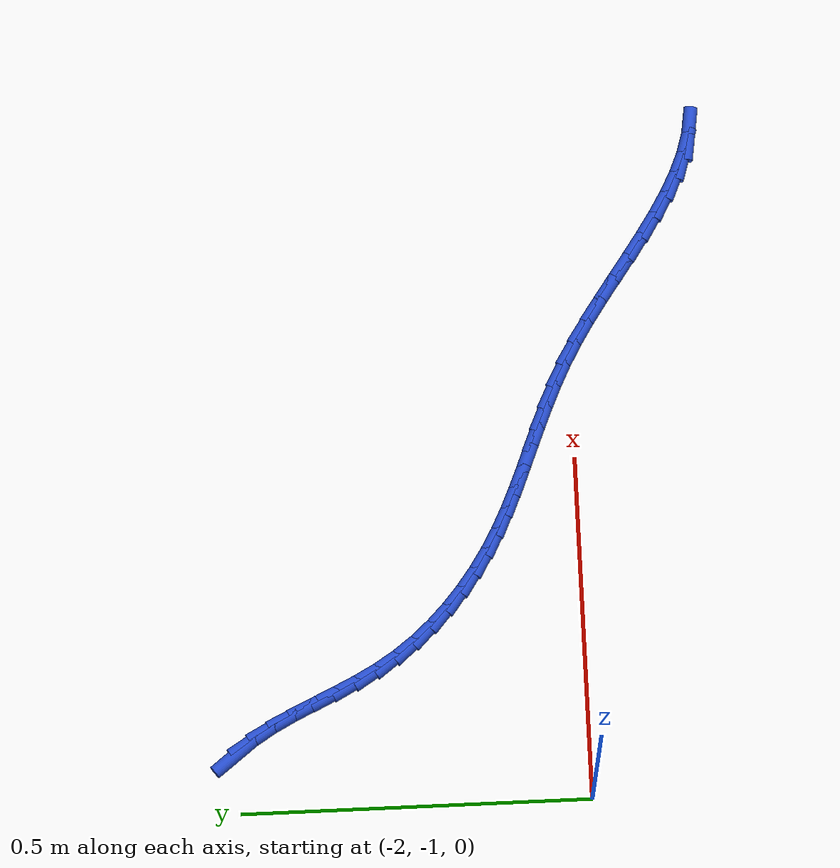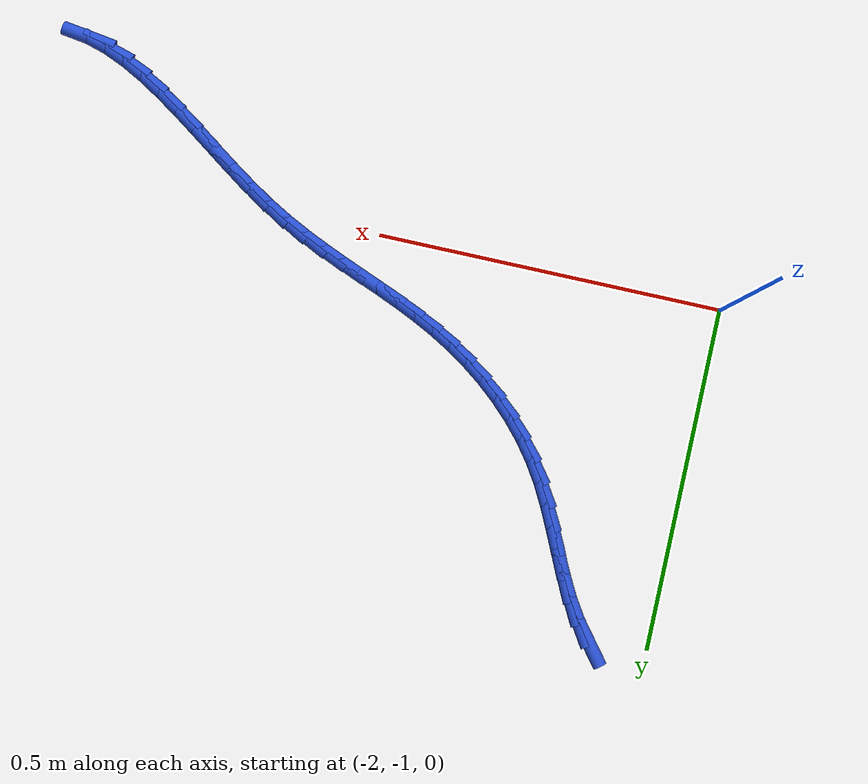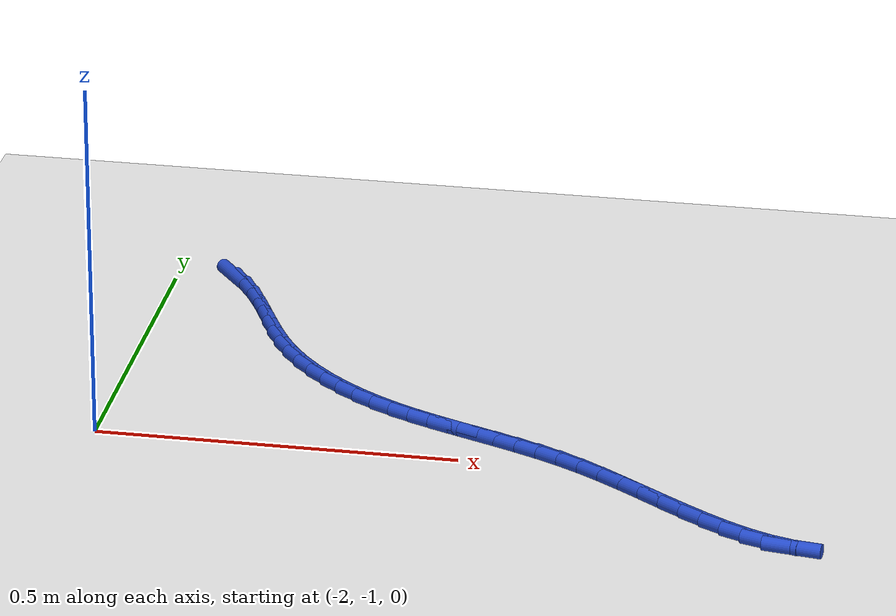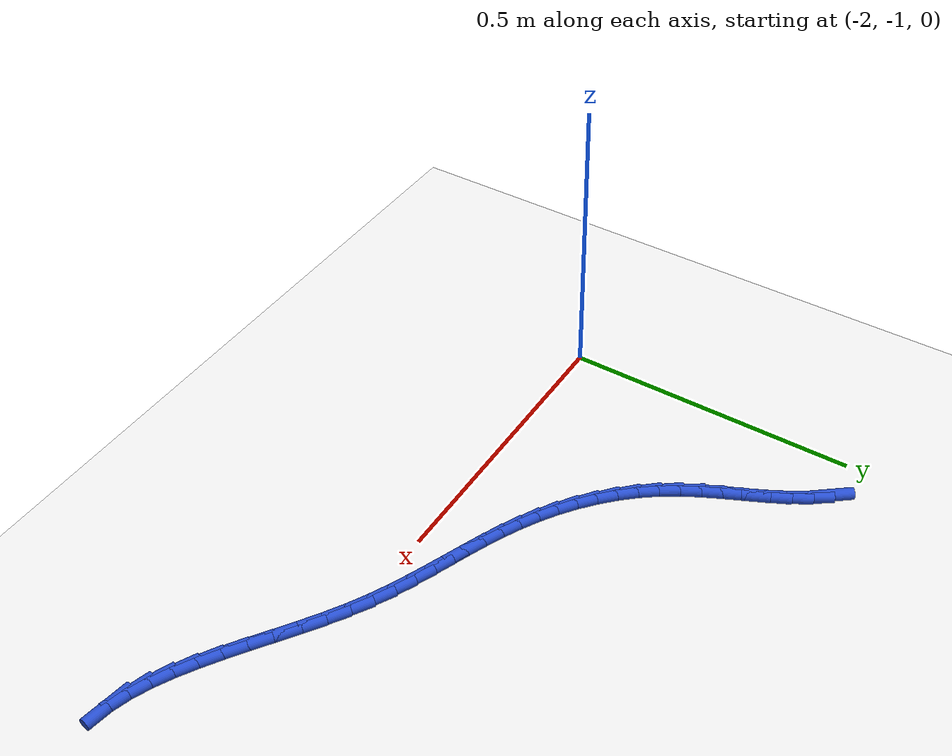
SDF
<sdf version="1.6">
 <world name="default">
  <model name="ground_plane">
   <static>1</static>
   <link name="link">
    <collision name="collision">
     <geometry><plane><normal>0 0 1</normal><size>100 100</size></plane></geometry>
     <surface><friction><ode><mu>100</mu><mu2>50</mu2></ode></friction></surface>
    </collision>
    <visual name="visual">
     <cast_shadows>0</cast_shadows>
     <geometry><plane><normal>0 0 1</normal><size>100 100</size></plane></geometry>
     <material>
      <script><uri>file://media/materials/scripts/gazebo.material</uri><name>Gazebo/WhiteGlow</name></script>
     </material>
    </visual>
   </link>
  </model>
  <model name="line">
   <link name="link_125">
    <pose>-1.9141916679884465 -0.49680602879573327 0.01 0 1.57 -0.9065160102175781</pose>
    <collision name="collision">
     <geometry><cylinder><radius>0.01</radius><length>0.08</length></cylinder></geometry>
    </collision>
    <visual name="visual">
     <material>
      <script><name>Gazebo/Blue</name><uri>file://media/materials/scripts/gazebo.material</uri></script>
     </material>
     <geometry><cylinder><radius>0.01</radius><length>0.08</length></cylinder></geometry>
    </visual>
   </link>
   <link name="link_126">
    <pose>-1.8940552648370443 -0.5225234676857663 0.01 0 1.57 -1.0103827231081042</pose>
    <collision name="collision">
     <geometry><cylinder><radius>0.01</radius><length>0.08</length></cylinder></geometry>
    </collision>
    <visual name="visual">
     <material>
      <script><name>Gazebo/Blue</name><uri>file://media/materials/scripts/gazebo.material</uri></script>
     </material>
     <geometry><cylinder><radius>0.01</radius><length>0.08</length></cylinder></geometry>
    </visual>
   </link>
   <link name="link_127">
    <pose>-1.876521114274096 -0.5504651855248635 0.01 0 1.57 -1.0823350259223155</pose>
    <collision name="collision">
     <geometry><cylinder><radius>0.01</radius><length>0.08</length></cylinder></geometry>
    </collision>
    <visual name="visual">
     <material>
      <script><name>Gazebo/Blue</name><uri>file://media/materials/scripts/gazebo.material</uri></script>
     </material>
     <geometry><cylinder><radius>0.01</radius><length>0.08</length></cylinder></geometry>
    </visual>
   </link>
   <link name="link_128">
    <pose>-1.860809726167149 -0.5800304749841103 0.01 0 1.57 -1.123653668946435</pose>
    <collision name="collision">
     <geometry><cylinder><radius>0.01</radius><length>0.08</length></cylinder></geometry>
    </collision>
    <visual name="visual">
     <material>
      <script><name>Gazebo/Blue</name><uri>file://media/materials/scripts/gazebo.material</uri></script>
     </material>
     <geometry><cylinder><radius>0.01</radius><length>0.08</length></cylinder></geometry>
    </visual>
   </link>
   <link name="link_129">
    <pose>-1.846141610383749 -0.6106186287345927 0.01 0 1.57 -1.1359486665251943</pose>
    <collision name="collision">
     <geometry><cylinder><radius>0.01</radius><length>0.08</length></cylinder></geometry>
    </collision>
    <visual name="visual">
     <material>
      <script><name>Gazebo/Blue</name><uri>file://media/materials/scripts/gazebo.material</uri></script>
     </material>
     <geometry><cylinder><radius>0.01</radius><length>0.08</length></cylinder></geometry>
    </visual>
   </link>
   <link name="link_130">
    <pose>-1.8317372767914422 -0.6416289394473962 0.01 0 1.57 -1.1200969514485288</pose>
    <collision name="collision">
     <geometry><cylinder><radius>0.01</radius><length>0.08</length></cylinder></geometry>
    </collision>
    <visual name="visual">
     <material>
      <script><name>Gazebo/Blue</name><uri>file://media/materials/scripts/gazebo.material</uri></script>
     </material>
     <geometry><cylinder><radius>0.01</radius><length>0.08</length></cylinder></geometry>
    </visual>
   </link>
   <link name="link_131">
    <pose>-1.8168172352577754 -0.6724606997936066 0.01 0 1.57 -1.0760009208835482</pose>
    <collision name="collision">
     <geometry><cylinder><radius>0.01</radius><length>0.08</length></cylinder></geometry>
    </collision>
    <visual name="visual">
     <material>
      <script><name>Gazebo/Blue</name><uri>file://media/materials/scripts/gazebo.material</uri></script>
     </material>
     <geometry><cylinder><radius>0.01</radius><length>0.08</length></cylinder></geometry>
    </visual>
   </link>
   <link name="link_132">
    <pose>-1.8006019956502934 -0.70251320244431 0.01 0 1.57 -1.004088030014121</pose>
    <collision name="collision">
     <geometry><cylinder><radius>0.01</radius><length>0.08</length></cylinder></geometry>
    </collision>
    <visual name="visual">
     <material>
      <script><name>Gazebo/Blue</name><uri>file://media/materials/scripts/gazebo.material</uri></script>
     </material>
     <geometry><cylinder><radius>0.01</radius><length>0.08</length></cylinder></geometry>
    </visual>
   </link>
   <link name="link_133">
    <pose>-1.7823452738773249 -0.7312036618149991 0.01 0 1.57 -0.9221451541750522</pose>
    <collision name="collision">
     <geometry><cylinder><radius>0.01</radius><length>0.08</length></cylinder></geometry>
    </collision>
    <visual name="visual">
     <material>
      <script><name>Gazebo/Blue</name><uri>file://media/materials/scripts/gazebo.material</uri></script>
     </material>
     <geometry><cylinder><radius>0.01</radius><length>0.08</length></cylinder></geometry>
    </visual>
   </link>
   <link name="link_134">
    <pose>-1.761846653951014 -0.7582439046389002 0.01 0 1.57 -0.8448805107467622</pose>
    <collision name="collision">
     <geometry><cylinder><radius>0.01</radius><length>0.08</length></cylinder></geometry>
    </collision>
    <visual name="visual">
     <material>
      <script><name>Gazebo/Blue</name><uri>file://media/materials/scripts/gazebo.material</uri></script>
     </material>
     <geometry><cylinder><radius>0.01</radius><length>0.08</length></cylinder></geometry>
    </visual>
   </link>
   <link name="link_135">
    <pose>-1.7393524960266067 -0.783586888710216 0.01 0 1.57 -0.7723454670075549</pose>
    <collision name="collision">
     <geometry><cylinder><radius>0.01</radius><length>0.08</length></cylinder></geometry>
    </collision>
    <visual name="visual">
     <material>
      <script><name>Gazebo/Blue</name><uri>file://media/materials/scripts/gazebo.material</uri></script>
     </material>
     <geometry><cylinder><radius>0.01</radius><length>0.08</length></cylinder></geometry>
    </visual>
   </link>
   <link name="link_136">
    <pose>-1.7151222982747898 -0.8071926625858297 0.01 0 1.57 -0.7039943866764551</pose>
    <collision name="collision">
     <geometry><cylinder><radius>0.01</radius><length>0.08</length></cylinder></geometry>
    </collision>
    <visual name="visual">
     <material>
      <script><name>Gazebo/Blue</name><uri>file://media/materials/scripts/gazebo.material</uri></script>
     </material>
     <geometry><cylinder><radius>0.01</radius><length>0.08</length></cylinder></geometry>
    </visual>
   </link>
   <link name="link_137">
    <pose>-1.6894155588662496 -0.8290212748226243 0.01 0 1.57 -0.6391766042514246</pose>
    <collision name="collision">
     <geometry><cylinder><radius>0.01</radius><length>0.08</length></cylinder></geometry>
    </collision>
    <visual name="visual">
     <material>
      <script><name>Gazebo/Blue</name><uri>file://media/materials/scripts/gazebo.material</uri></script>
     </material>
     <geometry><cylinder><radius>0.01</radius><length>0.08</length></cylinder></geometry>
    </visual>
   </link>
   <link name="link_138">
    <pose>-1.6624917759716729 -0.8490327739774841 0.01 0 1.57 -0.5771708336361118</pose>
    <collision name="collision">
     <geometry><cylinder><radius>0.01</radius><length>0.08</length></cylinder></geometry>
    </collision>
    <visual name="visual">
     <material>
      <script><name>Gazebo/Blue</name><uri>file://media/materials/scripts/gazebo.material</uri></script>
     </material>
     <geometry><cylinder><radius>0.01</radius><length>0.08</length></cylinder></geometry>
    </visual>
   </link>
   <link name="link_139">
    <pose>-1.6346104477617465 -0.8671872086072911 0.01 0 1.57 -0.5174218180754915</pose>
    <collision name="collision">
     <geometry><cylinder><radius>0.01</radius><length>0.08</length></cylinder></geometry>
    </collision>
    <visual name="visual">
     <material>
      <script><name>Gazebo/Blue</name><uri>file://media/materials/scripts/gazebo.material</uri></script>
     </material>
     <geometry><cylinder><radius>0.01</radius><length>0.08</length></cylinder></geometry>
    </visual>
   </link>
   <link name="link_140">
    <pose>-1.6060267688474585 -0.883455423353819 0.01 0 1.57 -0.46441415131262453</pose>
    <collision name="collision">
     <geometry><cylinder><radius>0.01</radius><length>0.08</length></cylinder></geometry>
    </collision>
    <visual name="visual">
     <material>
      <script><name>Gazebo/Blue</name><uri>file://media/materials/scripts/gazebo.material</uri></script>
     </material>
     <geometry><cylinder><radius>0.01</radius><length>0.08</length></cylinder></geometry>
    </visual>
   </link>
   <link name="link_141">
    <pose>-1.5769010954331062 -0.8980461783430259 0.01 0 1.57 -0.4238193698358599</pose>
    <collision name="collision">
     <geometry><cylinder><radius>0.01</radius><length>0.08</length></cylinder></geometry>
    </collision>
    <visual name="visual">
     <material>
      <script><name>Gazebo/Blue</name><uri>file://media/materials/scripts/gazebo.material</uri></script>
     </material>
     <geometry><cylinder><radius>0.01</radius><length>0.08</length></cylinder></geometry>
    </visual>
   </link>
   <link name="link_142">
    <pose>-1.547301191677958 -0.9114005138708252 0.01 0 1.57 -0.3966172261444883</pose>
    <collision name="collision">
     <geometry><cylinder><radius>0.01</radius><length>0.08</length></cylinder></geometry>
    </collision>
    <visual name="visual">
     <material>
      <script><name>Gazebo/Blue</name><uri>file://media/materials/scripts/gazebo.material</uri></script>
     </material>
     <geometry><cylinder><radius>0.01</radius><length>0.08</length></cylinder></geometry>
    </visual>
   </link>
   <link name="link_143">
    <pose>-1.5172909675348472 -0.923969139052151 0.01 0 1.57 -0.38308707780309137</pose>
    <collision name="collision">
     <geometry><cylinder><radius>0.01</radius><length>0.08</length></cylinder></geometry>
    </collision>
    <visual name="visual">
     <material>
      <script><name>Gazebo/Blue</name><uri>file://media/materials/scripts/gazebo.material</uri></script>
     </material>
     <geometry><cylinder><radius>0.01</radius><length>0.08</length></cylinder></geometry>
    </visual>
   </link>
   <link name="link_144">
    <pose>-1.486934332956608 -0.936202763001936 0.01 0 1.57 -0.3831393330859409</pose>
    <collision name="collision">
     <geometry><cylinder><radius>0.01</radius><length>0.08</length></cylinder></geometry>
    </collision>
    <visual name="visual">
     <material>
      <script><name>Gazebo/Blue</name><uri>file://media/materials/scripts/gazebo.material</uri></script>
     </material>
     <geometry><cylinder><radius>0.01</radius><length>0.08</length></cylinder></geometry>
    </visual>
   </link>
   <link name="link_145">
    <pose>-1.4562951978960714 -0.9485520948351139 0.01 0 1.57 -0.3964016126869477</pose>
    <collision name="collision">
     <geometry><cylinder><radius>0.01</radius><length>0.08</length></cylinder></geometry>
    </collision>
    <visual name="visual">
     <material>
      <script><name>Gazebo/Blue</name><uri>file://media/materials/scripts/gazebo.material</uri></script>
     </material>
     <geometry><cylinder><radius>0.01</radius><length>0.08</length></cylinder></geometry>
    </visual>
   </link>
   <link name="link_146">
    <pose>-1.4254374723060723 -0.9614678436666176 0.01 0 1.57 -0.42224484653255234</pose>
    <collision name="collision">
     <geometry><cylinder><radius>0.01</radius><length>0.08</length></cylinder></geometry>
    </collision>
    <visual name="visual">
     <material>
      <script><name>Gazebo/Blue</name><uri>file://media/materials/scripts/gazebo.material</uri></script>
     </material>
     <geometry><cylinder><radius>0.01</radius><length>0.08</length></cylinder></geometry>
    </visual>
   </link>
   <link name="link_147">
    <pose>-1.3944250661394435 -0.9754007186113809 0.01 0 1.57 -0.45975936855950156</pose>
    <collision name="collision">
     <geometry><cylinder><radius>0.01</radius><length>0.08</length></cylinder></geometry>
    </collision>
    <visual name="visual">
     <material>
      <script><name>Gazebo/Blue</name><uri>file://media/materials/scripts/gazebo.material</uri></script>
     </material>
     <geometry><cylinder><radius>0.01</radius><length>0.08</length></cylinder></geometry>
    </visual>
   </link>
   <link name="link_148">
    <pose>-1.363321889349018 -0.9908014287843372 0.01 0 1.57 -0.5076801045312463</pose>
    <collision name="collision">
     <geometry><cylinder><radius>0.01</radius><length>0.08</length></cylinder></geometry>
    </collision>
    <visual name="visual">
     <material>
      <script><name>Gazebo/Blue</name><uri>file://media/materials/scripts/gazebo.material</uri></script>
     </material>
     <geometry><cylinder><radius>0.01</radius><length>0.08</length></cylinder></geometry>
    </visual>
   </link>
   <link name="link_149">
    <pose>-1.3321918111309985 -1.0081196176443066 0.01 0 1.57 -0.5573014672206642</pose>
    <collision name="collision">
     <geometry><cylinder><radius>0.01</radius><length>0.08</length></cylinder></geometry>
    </collision>
    <visual name="visual">
     <material>
      <script><name>Gazebo/Blue</name><uri>file://media/materials/scripts/gazebo.material</uri></script>
     </material>
     <geometry><cylinder><radius>0.01</radius><length>0.08</length></cylinder></geometry>
    </visual>
   </link>
   <link name="link_150">
    <pose>-1.301087188210866 -1.0275039141908704 0.01 0 1.57 -0.5920810502128917</pose>
    <collision name="collision">
     <geometry><cylinder><radius>0.01</radius><length>0.08</length></cylinder></geometry>
    </collision>
    <visual name="visual">
     <material>
      <script><name>Gazebo/Blue</name><uri>file://media/materials/scripts/gazebo.material</uri></script>
     </material>
     <geometry><cylinder><radius>0.01</radius><length>0.08</length></cylinder></geometry>
    </visual>
   </link>
   <link name="link_151">
    <pose>-1.2700331130269145 -1.0483900731101239 0.01 0 1.57 -0.6114385830324567</pose>
    <collision name="collision">
     <geometry><cylinder><radius>0.01</radius><length>0.08</length></cylinder></geometry>
    </collision>
    <visual name="visual">
     <material>
      <script><name>Gazebo/Blue</name><uri>file://media/materials/scripts/gazebo.material</uri></script>
     </material>
     <geometry><cylinder><radius>0.01</radius><length>0.08</length></cylinder></geometry>
    </visual>
   </link>
   <link name="link_152">
    <pose>-1.2390507312590062 -1.07011065391967 0.01 0 1.57 -0.61645794129594</pose>
    <collision name="collision">
     <geometry><cylinder><radius>0.01</radius><length>0.08</length></cylinder></geometry>
    </collision>
    <visual name="visual">
     <material>
      <script><name>Gazebo/Blue</name><uri>file://media/materials/scripts/gazebo.material</uri></script>
     </material>
     <geometry><cylinder><radius>0.01</radius><length>0.08</length></cylinder></geometry>
    </visual>
   </link>
   <link name="link_153">
    <pose>-1.2081611885869996 -1.0919982161371116 0.01 0 1.57 -0.6073205305370486</pose>
    <collision name="collision">
     <geometry><cylinder><radius>0.01</radius><length>0.08</length></cylinder></geometry>
    </collision>
    <visual name="visual">
     <material>
      <script><name>Gazebo/Blue</name><uri>file://media/materials/scripts/gazebo.material</uri></script>
     </material>
     <geometry><cylinder><radius>0.01</radius><length>0.08</length></cylinder></geometry>
    </visual>
   </link>
   <link name="link_154">
    <pose>-1.177385630690756 -1.1133853192800518 0.01 0 1.57 -0.5832939228353948</pose>
    <collision name="collision">
     <geometry><cylinder><radius>0.01</radius><length>0.08</length></cylinder></geometry>
    </collision>
    <visual name="visual">
     <material>
      <script><name>Gazebo/Blue</name><uri>file://media/materials/scripts/gazebo.material</uri></script>
     </material>
     <geometry><cylinder><radius>0.01</radius><length>0.08</length></cylinder></geometry>
    </visual>
   </link>
   <link name="link_155">
    <pose>-1.1467452032501346 -1.1336045228660934 0.01 0 1.57 -0.5426686583952045</pose>
    <collision name="collision">
     <geometry><cylinder><radius>0.01</radius><length>0.08</length></cylinder></geometry>
    </collision>
    <visual name="visual">
     <material>
      <script><name>Gazebo/Blue</name><uri>file://media/materials/scripts/gazebo.material</uri></script>
     </material>
     <geometry><cylinder><radius>0.01</radius><length>0.08</length></cylinder></geometry>
    </visual>
   </link>
   <link name="link_156">
    <pose>-1.116261051944996 -1.1519883864128402 0.01 0 1.57 -0.4826719855212962</pose>
    <collision name="collision">
     <geometry><cylinder><radius>0.01</radius><length>0.08</length></cylinder></geometry>
    </collision>
    <visual name="visual">
     <material>
      <script><name>Gazebo/Blue</name><uri>file://media/materials/scripts/gazebo.material</uri></script>
     </material>
     <geometry><cylinder><radius>0.01</radius><length>0.08</length></cylinder></geometry>
    </visual>
   </link>
   <link name="link_157">
    <pose>-1.0859543224551989 -1.1678694694378942 0.01 0 1.57 -0.39947397054210915</pose>
    <collision name="collision">
     <geometry><cylinder><radius>0.01</radius><length>0.08</length></cylinder></geometry>
    </collision>
    <visual name="visual">
     <material>
      <script><name>Gazebo/Blue</name><uri>file://media/materials/scripts/gazebo.material</uri></script>
     </material>
     <geometry><cylinder><radius>0.01</radius><length>0.08</length></cylinder></geometry>
    </visual>
   </link>
   <link name="link_158">
    <pose>-1.055846160460606 -1.1805803314588594 0.01 0 1.57 -0.2885894309480377</pose>
    <collision name="collision">
     <geometry><cylinder><radius>0.01</radius><length>0.08</length></cylinder></geometry>
    </collision>
    <visual name="visual">
     <material>
      <script><name>Gazebo/Blue</name><uri>file://media/materials/scripts/gazebo.material</uri></script>
     </material>
     <geometry><cylinder><radius>0.01</radius><length>0.08</length></cylinder></geometry>
    </visual>
   </link>
   <link name="link_159">
    <pose>-1.025957711641076 -1.1894535319933377 0.01 0 1.57 -0.14628161644997087</pose>
    <collision name="collision">
     <geometry><cylinder><radius>0.01</radius><length>0.08</length></cylinder></geometry>
    </collision>
    <visual name="visual">
     <material>
      <script><name>Gazebo/Blue</name><uri>file://media/materials/scripts/gazebo.material</uri></script>
     </material>
     <geometry><cylinder><radius>0.01</radius><length>0.08</length></cylinder></geometry>
    </visual>
   </link>
  </model>
 </world>
</sdf>
